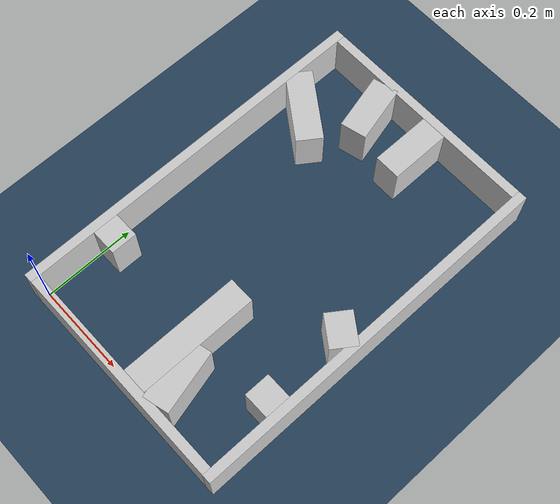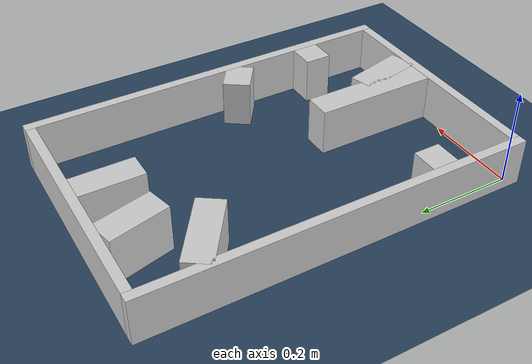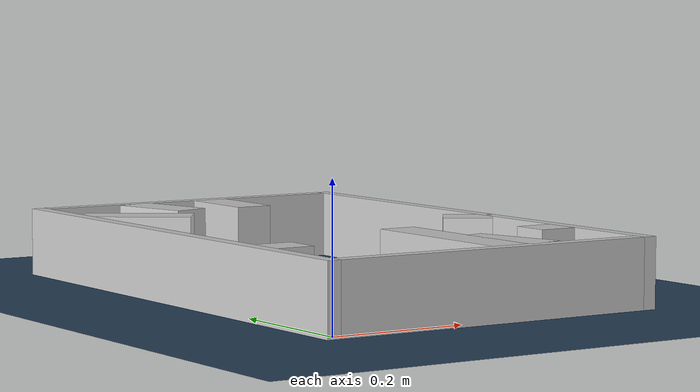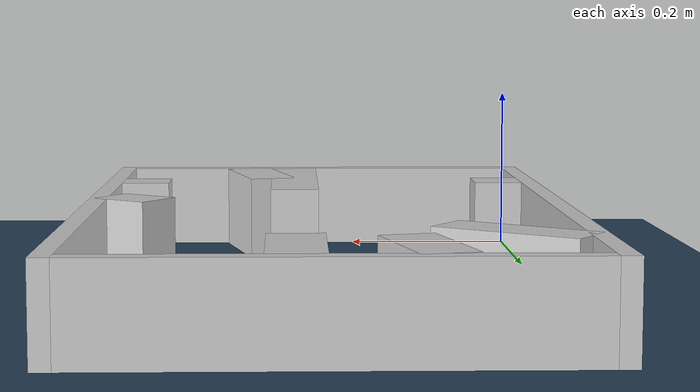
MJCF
<?xml version="1.0" ?>
<mujoco model="generated_real_template">
  <compiler angle="degree"/>
  <option timestep="0.002" integrator="implicitfast" iterations="100" cone="elliptic"/>
  <default>
    <geom density="1"/>
  </default>
  <asset>
    <texture builtin="gradient" height="3072" rgb1="0.3 0.5 0.7" rgb2="0 0 0" type="skybox" width="512"/>
    <texture builtin="checker" height="300" mark="edge" markrgb="0.8 0.8 0.8" name="groundplane" rgb1="0.2 0.3 0.4" rgb2="0.1 0.2 0.3" type="2d" width="300"/>
    <material name="groundplane" reflectance="0.2" texrepeat="5 5" texture="groundplane" texuniform="true"/>
  </asset>
  <worldbody>
    <light dir="0 0 -1" directional="true" pos="0 0 1.5"/>
    <geom name="floor" type="plane" condim="4" friction="0.5 0.005 0.001" material="groundplane" size="0 0 0.05"/>
    <body name="walls">
      <geom name="wall_boundary_left" type="box" condim="4" friction="1.0 0.005 0.0001" rgba="0.8 0.8 0.8 1" pos="-0.010000 0.387500 0.050000" euler="0 0 0.000000" size="0.010000 0.407500 0.050000"/>
      <geom name="wall_boundary_right" type="box" condim="4" friction="1.0 0.005 0.0001" rgba="0.8 0.8 0.8 1" pos="0.500000 0.387500 0.050000" euler="0 0 0.000000" size="0.010000 0.407500 0.050000"/>
      <geom name="wall_boundary_bottom" type="box" condim="4" friction="1.0 0.005 0.0001" rgba="0.8 0.8 0.8 1" pos="0.245000 -0.010000 0.050000" euler="0 0 0.000000" size="0.245000 0.010000 0.050000"/>
      <geom name="wall_boundary_top" type="box" condim="4" friction="1.0 0.005 0.0001" rgba="0.8 0.8 0.8 1" pos="0.245000 0.785000 0.050000" euler="0 0 0.000000" size="0.245000 0.010000 0.050000"/>
      <geom name="wall_inner_1_1" type="box" condim="4" friction="1.0 0.005 0.0001" rgba="0.8 0.8 0.8 1" pos="0.278927 0.130619 0.050000" euler="0 0 90.000000" size="0.130619 0.028500 0.050000"/>
      <geom name="wall_inner_1_2" type="box" condim="4" friction="1.0 0.005 0.0001" rgba="0.8 0.8 0.8 1" pos="0.278927 0.708990 0.050000" euler="0 0 90.000000" size="0.066010 0.028500 0.050000"/>
      <geom name="wall_inner_2_1" type="box" condim="4" friction="1.0 0.005 0.0001" rgba="0.8 0.8 0.8 1" pos="0.028510 0.158965 0.050000" euler="0 0 0.000000" size="0.028510 0.028500 0.050000"/>
      <geom name="wall_inner_2_2" type="box" condim="4" friction="1.0 0.005 0.0001" rgba="0.8 0.8 0.8 1" pos="0.461460 0.158965 0.050000" euler="0 0 0.000000" size="0.028540 0.028500 0.050000"/>
      <geom name="wall_inner_3_1" type="box" condim="4" friction="1.0 0.005 0.0001" rgba="0.8 0.8 0.8 1" pos="0.158889 0.713349 0.050000" euler="0 0 -75.845302" size="0.063581 0.028500 0.050000"/>
      <geom name="wall_inner_3_2" type="box" condim="4" friction="1.0 0.005 0.0001" rgba="0.8 0.8 0.8 1" pos="0.322094 0.066220 0.050000" euler="0 0 -75.845302" size="0.068293 0.028500 0.050000"/>
      <geom name="wall_inner_4_1" type="box" condim="4" friction="1.0 0.005 0.0001" rgba="0.8 0.8 0.8 1" pos="0.065344 0.619888 0.050000" euler="0 0 -34.963488" size="0.079735 0.028500 0.050000"/>
      <geom name="wall_inner_4_2" type="box" condim="4" friction="1.0 0.005 0.0001" rgba="0.8 0.8 0.8 1" pos="0.460475 0.343589 0.050000" euler="0 0 -34.963488" size="0.036027 0.028500 0.050000"/>
    </body>
  </worldbody>
</mujoco>
